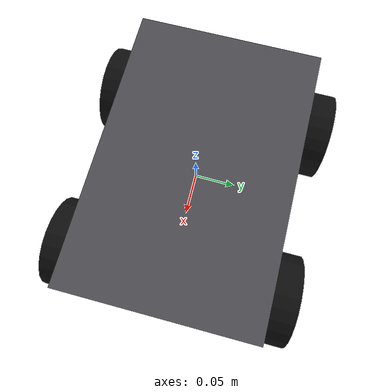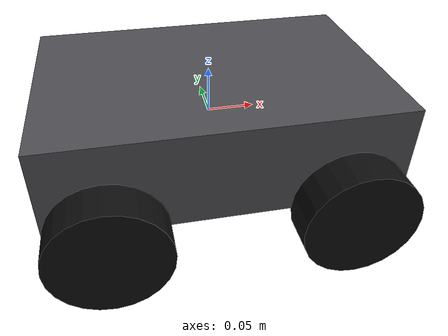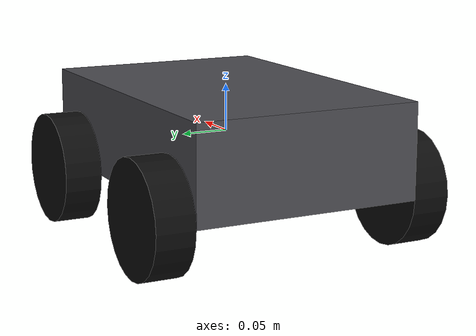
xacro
<?xml version="1.0"?>
<robot name="circe_rover" xmlns:xacro="http://www.ros.org/wiki/xacro">

  <xacro:property name="H_CAM"   value="0.18"/>   <!-- camera height (low) -->
  <xacro:property name="base_x"  value="0.36"/>
  <xacro:property name="base_y"  value="0.24"/>
  <xacro:property name="base_z"  value="0.10"/>
  <xacro:property name="wheel_r" value="0.06"/>
  <xacro:property name="wheel_w" value="0.04"/>
  <xacro:property name="track"   value="0.28"/>   <!-- wheel separation -->

  <material name="grey"><color rgba="0.3 0.3 0.32 1"/></material>
  <material name="black"><color rgba="0.05 0.05 0.05 1"/></material>

  <link name="base_link">
    <inertial>
      <mass value="6.0"/>
      <inertia ixx="0.06" ixy="0" ixz="0" iyy="0.10" iyz="0" izz="0.12"/>
    </inertial>
    <visual>
      <geometry><box size="${base_x} ${base_y} ${base_z}"/></geometry>
      <material name="grey"/>
    </visual>
    <collision>
      <geometry><box size="${base_x} ${base_y} ${base_z}"/></geometry>
    </collision>
  </link>

  <!-- 4 wheels: left/right x front/back (skid-steer) -->
  <xacro:macro name="wheel" params="name x y">
    <link name="${name}_link">
      <inertial><mass value="0.4"/>
        <inertia ixx="0.001" ixy="0" ixz="0" iyy="0.001" iyz="0" izz="0.001"/></inertial>
      <visual><origin rpy="1.5708 0 0"/>
        <geometry><cylinder radius="${wheel_r}" length="${wheel_w}"/></geometry>
        <material name="black"/></visual>
      <collision><origin rpy="1.5708 0 0"/>
        <geometry><cylinder radius="${wheel_r}" length="${wheel_w}"/></geometry></collision>
    </link>
    <joint name="${name}_joint" type="continuous">
      <parent link="base_link"/><child link="${name}_link"/>
      <origin xyz="${x} ${y} ${-base_z/2}"/>
      <axis xyz="0 1 0"/>
    </joint>
  </xacro:macro>
  <xacro:wheel name="fl" x="${ base_x/3}" y="${ track/2}"/>
  <xacro:wheel name="fr" x="${ base_x/3}" y="${-track/2}"/>
  <xacro:wheel name="bl" x="${-base_x/3}" y="${ track/2}"/>
  <xacro:wheel name="br" x="${-base_x/3}" y="${-track/2}"/>

  <!-- forward HORIZONTAL camera at H_CAM -->
  <link name="camera_link"/>
  <joint name="camera_joint" type="fixed">
    <parent link="base_link"/><child link="camera_link"/>
    <origin xyz="${base_x/2} 0 ${H_CAM - base_z/2}" rpy="0 0 0"/>
  </joint>

  <link name="imu_link"/>
  <joint name="imu_joint" type="fixed">
    <parent link="base_link"/><child link="imu_link"/><origin xyz="0 0 0"/>
  </joint>

  <link name="tof_link"/>
  <joint name="tof_joint" type="fixed">
    <parent link="base_link"/><child link="tof_link"/>
    <origin xyz="${base_x/2} 0 0"/>
  </joint>

  <!-- ================= Gazebo (gz-sim Harmonic) ================= -->
  <gazebo>
    <plugin filename="gz-sim-diff-drive-system" name="gz::sim::systems::DiffDrive">
      <!-- skid-steer via two DiffDrive pairs sharing cmd; agent may tune -->
      <left_joint>fl_joint</left_joint>
      <left_joint>bl_joint</left_joint>
      <right_joint>fr_joint</right_joint>
      <right_joint>br_joint</right_joint>
      <wheel_separation>${track}</wheel_separation>
      <wheel_radius>${wheel_r}</wheel_radius>
      <topic>/rover/cmd_vel</topic>
      <odom_topic>/rover/odom</odom_topic>
      <max_linear_acceleration>1.0</max_linear_acceleration>
    </plugin>
  </gazebo>

  <gazebo reference="camera_link">
    <sensor name="camera" type="camera">
      <always_on>1</always_on>
      <update_rate>30</update_rate>
      <topic>/rover/camera/image</topic>
      <camera>
        <horizontal_fov>1.0857</horizontal_fov> <!-- 62.2 deg, RPi Cam v2 -->
        <image><width>1280</width><height>720</height><format>R8G8B8</format></image>
        <clip><near>0.05</near><far>30.0</far></clip>
      </camera>
    </sensor>
  </gazebo>

  <gazebo reference="imu_link">
    <sensor name="imu" type="imu">
      <always_on>1</always_on><update_rate>100</update_rate>
      <topic>/rover/imu</topic>
    </sensor>
  </gazebo>

  <gazebo reference="tof_link">
    <sensor name="tof" type="gpu_lidar">   <!-- narrow single-ray = ToF -->
      <always_on>1</always_on><update_rate>20</update_rate>
      <topic>/rover/tof</topic>
      <lidar>
        <scan><horizontal><samples>1</samples><min_angle>0</min_angle><max_angle>0</max_angle></horizontal></scan>
        <range><min>0.05</min><max>4.0</max></range>
      </lidar>
    </sensor>
  </gazebo>
</robot>
